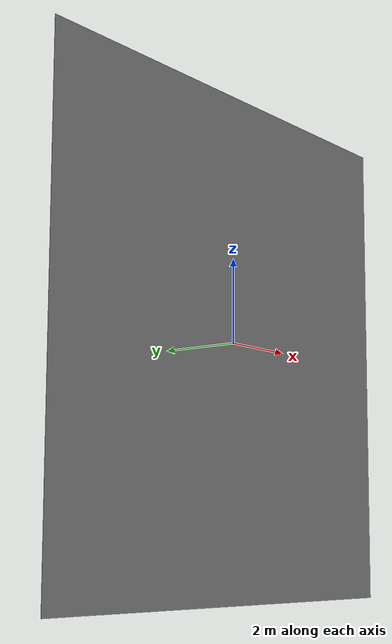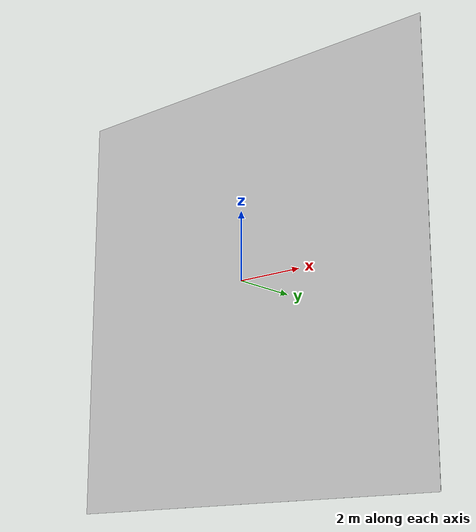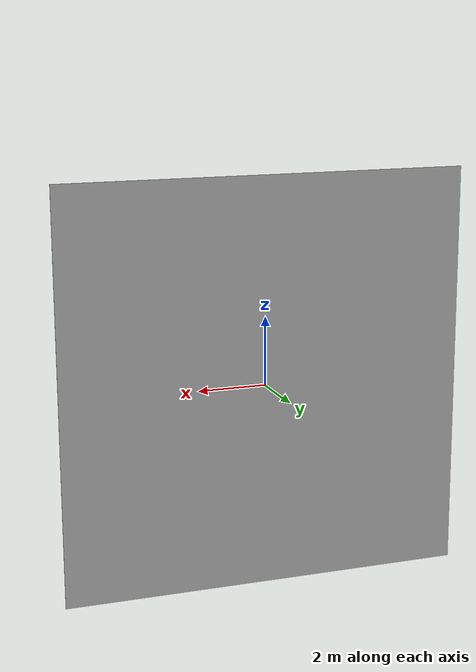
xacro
<?xml version="1.0" ?>
<robot name="urdf_full_base" xmlns:xacro="http://www.ros.org/wiki/xacro">

<xacro:include filename="$(find urdf_full_base_description)/urdf/materials.xacro" />
<xacro:include filename="$(find urdf_full_base_description)/urdf/urdf_full_base.trans" />
<xacro:include filename="$(find urdf_full_base_description)/urdf/urdf_full_base.gazebo" />
<link name="base_link">
  <inertial>
    <origin xyz="0.0 0.005 0.0" rpy="0 0 0"/>
    <mass value="11303.999999999998"/>
    <inertia ixx="135648.0942" iyy="271296.0" izz="135648.0942" ixy="0.0" iyz="0.0" ixz="0.0"/>
  </inertial>
  <visual>
    <origin xyz="0 0 0" rpy="0 0 0"/>
    <geometry>
      <mesh filename="package://urdf_full_base_description/meshes/base_link.stl" scale="0.001 0.001 0.001"/>
    </geometry>
    <material name="silver"/>
  </visual>
  <collision>
    <origin xyz="0 0 0" rpy="0 0 0"/>
    <geometry>
      <mesh filename="package://urdf_full_base_description/meshes/base_link.stl" scale="0.001 0.001 0.001"/>
    </geometry>
  </collision>
</link>

</robot>

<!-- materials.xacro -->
<robot name="urdf_full_base" xmlns:xacro="http://www.ros.org/wiki/xacro" >

<material name="silver">
  <color rgba="0.700 0.700 0.700 1.000"/>
</material>

</robot>

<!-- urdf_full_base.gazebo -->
<robot name="urdf_full_base" xmlns:xacro="http://www.ros.org/wiki/xacro" >

<xacro:property name="body_color" value="Gazebo/Silver" />

<gazebo>
  <plugin name="control" filename="libgazebo_ros_control.so"/>
</gazebo>
<gazebo reference="base_link">
  <material>${body_color}</material>
  <mu1>0.2</mu1>
  <mu2>0.2</mu2>
  <selfCollide>true</selfCollide>
  <gravity>true</gravity>
</gazebo>

</robot>
